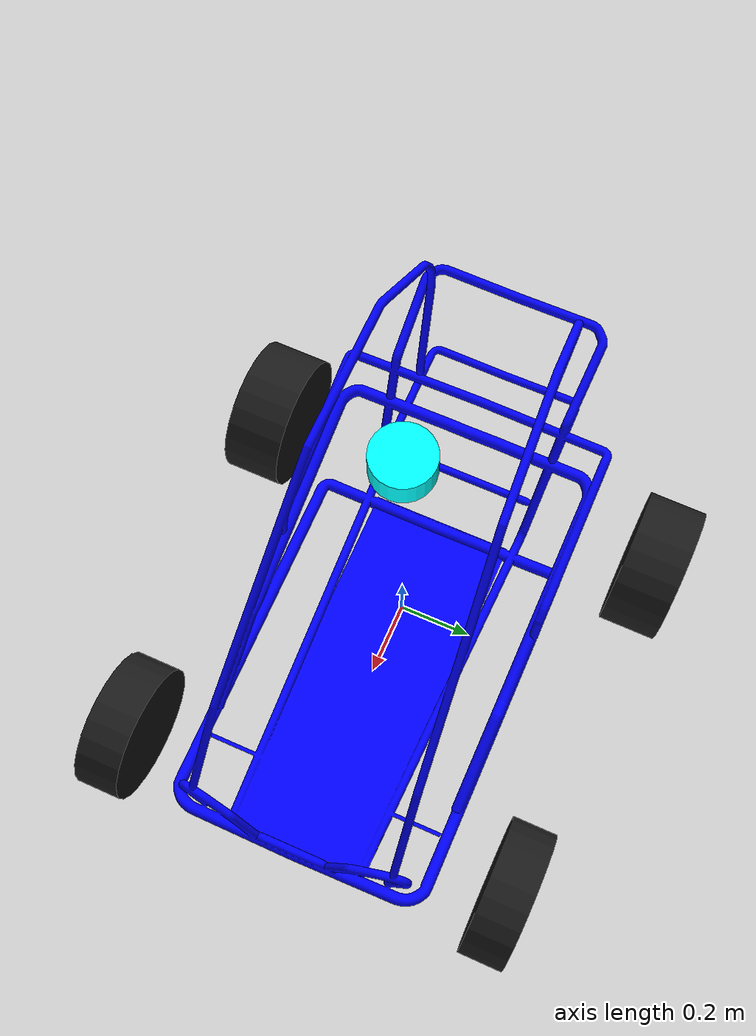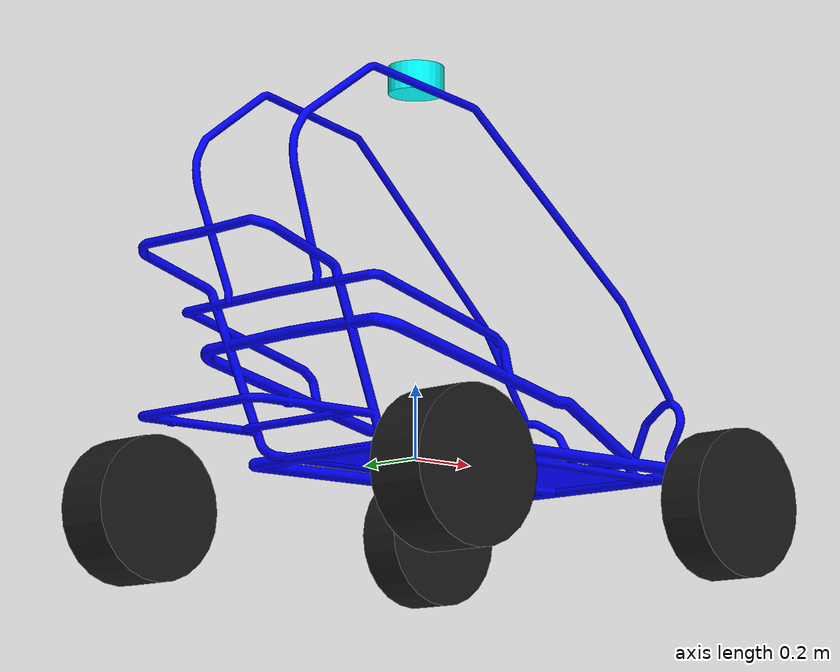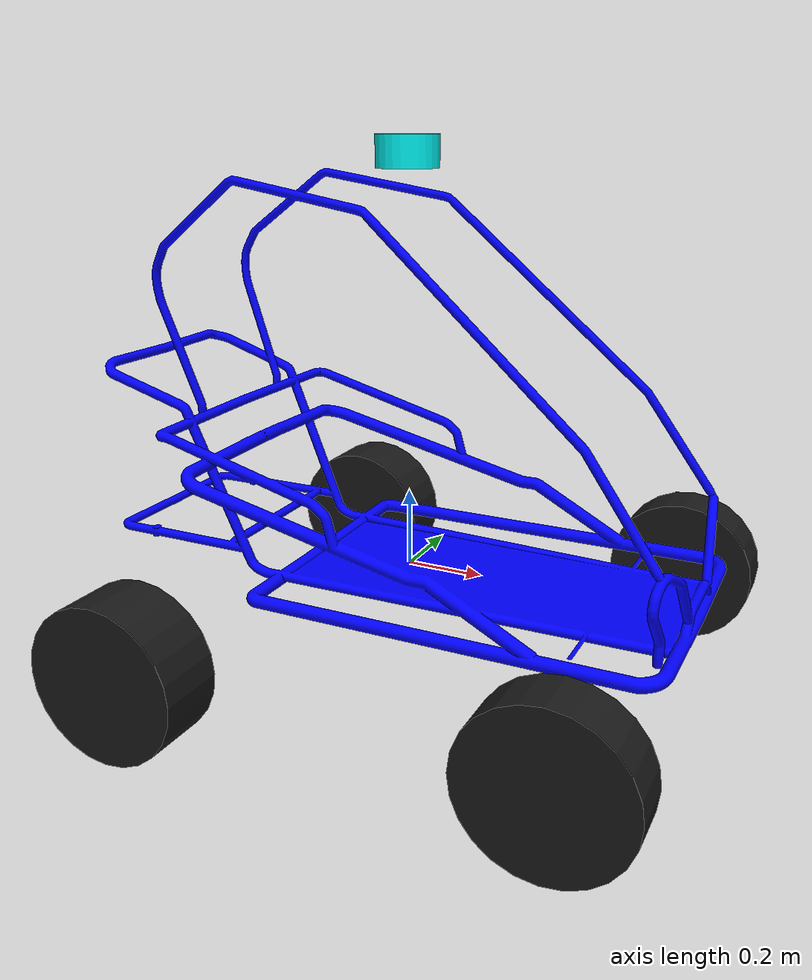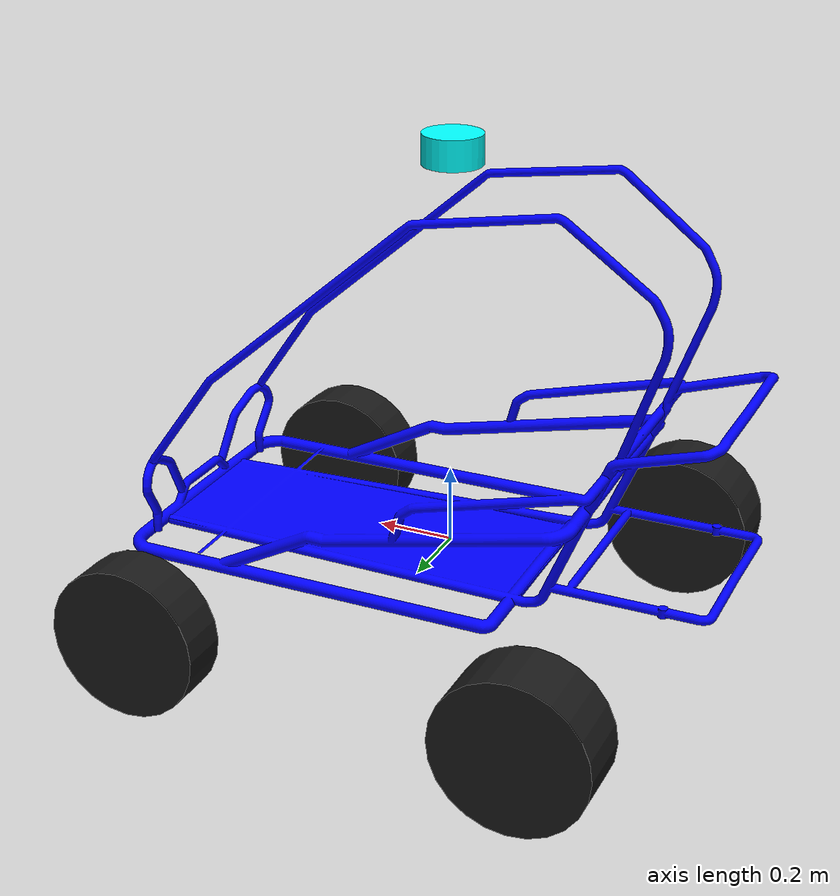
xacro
<?xml version="1.0" ?>

<!-- |    This document was autogenerated by xacro from building_robot.urdf.xacro      | -->
<!-- |    EDITING THIS FILE BY HAND IS NOT RECOMMENDED                                 | -->
  <robot name="new_car" xmlns:xacro="http://ros.org/wiki/xacro">

  <xacro:include filename="inertia_macros.xacro"/>
  <xacro:include filename="ros2_control_ackerman.xacro"/>

  <!-- Colors -->

  <material name="White">
    <color rgba="1.0 1.0 1.0 1.0"/>
  </material>

  <material name="Blue">
      <color rgba="0.0 0.0 1.0 1.0"/>
  </material>

  <material name="Gray">
    <color rgba="0.5 0.5 0.5 1.0"/>
  </material>

  <material name="Black">
      <color rgba="0.1 0.1 0.1 1"/>
  </material>

  <material name="Cyan">
    <color rgba="0 1.0 1.0 1.0"/>
  </material>

  <!-- Robot Base -->
  <link name="base_link">
    <visual>
      <origin rpy="0 0 0" xyz="0 0 0"/>
      <geometry>
        <mesh filename="package://robot_description/description/meshes/new_car_chassis.stl" scale="0.58 0.58 0.58"/>
      </geometry>
      <material name="Blue"/>
    </visual>
    <collision>
      <origin rpy="0 0 0" xyz="0 0 0"/>
      <geometry>
        <mesh filename="package://robot_description/description/meshes/new_car_chassis.stl" scale="0.58 0.58 0.58"/>
      </geometry>
    </collision>
    <xacro:inertia_box mass="113.4" x="1.65" y="0.92" z="1.13">
      <origin rpy="0 0 0" xyz="0 0 0"/>
    </xacro:inertia_box>
  </link>
  <!-- Robot Footprint -->
  <link name="base_footprint"/>
  <joint name="base_joint" type="fixed">
    <parent link="base_link"/>
    <child link="base_footprint"/>
    <origin rpy="0 0 0" xyz="0.0 0.0 -0.323"/>
  </joint>
  <!-- Front Wheels -->
  <link name="Front_Left_steering_link">
    <visual>
      <origin rpy="0 0 0" xyz="0 0 0"/>
      <geometry>
        <cylinder length="0.13" radius="0.01"/>
      </geometry>
      <material name="Black"/>
    </visual>
    <!-- added inertia -->
    <xacro:inertia_cylinder mass="0.001" length="0.13" radius="0.01">
      <origin rpy="0 0 0" xyz="0 0 0"/>
    </xacro:inertia_cylinder>
  </link>
  <joint name="Front_Left_steering_joint" type="revolute">
    <parent link="base_link"/>
    <child link="Front_Left_steering_link"/>
    <origin rpy="0 0 0" xyz="0.6 0.5800000000000001 -0.123"/>
    <axis xyz="0 0 1"/>
    <limit effort="1000.0" lower="-0.698" upper="0.698" velocity="0.5"/>
  </joint>
  <link name="Front_Left_wheel_link">
    <visual>
      <origin rpy="1.5707963267948966 0 0" xyz="0 0 0"/>
      <geometry>
        <cylinder length="0.13" radius="0.2"/>
      </geometry>
      <material name="Black"/>
    </visual>
    <collision>
      <origin rpy="1.5707963267948966 0 0" xyz="0 0 0"/>
      <geometry>
        <cylinder length="0.13" radius="0.2"/>
      </geometry>
    </collision>
    <xacro:inertia_cylinder mass="4.5" length="0.13" radius="0.2">
      <origin rpy="1.5707963267948966 0 0" xyz="0 0 0"/>
    </xacro:inertia_cylinder>
  </link>
  <joint name="Front_Left_wheel_joint" type="continuous">
    <parent link="Front_Left_steering_link"/>
    <child link="Front_Left_wheel_link"/>
    <origin rpy="0 0 0" xyz="0 0 0"/>
    <axis xyz="0 1 0"/>
  </joint>
  <link name="Front_Right_steering_link">
    <visual>
      <origin rpy="0 0 0" xyz="0 0 0"/>
      <geometry>
        <cylinder length="0.13" radius="0.01"/>
      </geometry>
      <material name="Black"/>
    </visual>
    <!-- added inertia -->
    <xacro:inertia_cylinder mass="0.001" length="0.13" radius="0.01">
      <origin rpy="0 0 0" xyz="0 0 0"/>
    </xacro:inertia_cylinder>
  </link>
  <joint name="Front_Right_steering_joint" type="revolute">
    <parent link="base_link"/>
    <child link="Front_Right_steering_link"/>
    <origin rpy="0 0 0" xyz="0.6 -0.5800000000000001 -0.123"/>
    <axis xyz="0 0 1"/>
    <limit effort="1000.0" lower="-0.698" upper="0.698" velocity="0.5"/>
  </joint>
  <link name="Front_Right_wheel_link">
    <visual>
      <origin rpy="1.5707963267948966 0 0" xyz="0 0 0"/>
      <geometry>
        <cylinder length="0.13" radius="0.2"/>
      </geometry>
      <material name="Black"/>
    </visual>
    <collision>
      <origin rpy="1.5707963267948966 0 0" xyz="0 0 0"/>
      <geometry>
        <cylinder length="0.13" radius="0.2"/>
      </geometry>
    </collision>
    <xacro:inertia_cylinder mass="4.5" length="0.13" radius="0.2">
      <origin rpy="1.5707963267948966 0 0" xyz="0 0 0"/>
    </xacro:inertia_cylinder>
  </link>
  <joint name="Front_Right_wheel_joint" type="continuous">
    <parent link="Front_Right_steering_link"/>
    <child link="Front_Right_wheel_link"/>
    <origin rpy="0 0 0" xyz="0 0 0"/>
    <axis xyz="0 1 0"/>
  </joint>
  <!-- Rear Wheels -->
  <link name="Rear_Left_link">
    <visual>
      <origin rpy="1.5707963267948966 0 0" xyz="0 0 0"/>
      <geometry>
        <cylinder length="0.17" radius="0.2"/>
      </geometry>
      <material name="Black"/>
    </visual>
    <collision>
      <origin rpy="1.5707963267948966 0 0" xyz="0 0 0"/>
      <geometry>
        <cylinder length="0.17" radius="0.2"/>
      </geometry>
    </collision>
    <xacro:inertia_cylinder mass="6.8" length="0.17" radius="0.2">
      <origin rpy="1.5707963267948966 0 0" xyz="0 0 0"/>
    </xacro:inertia_cylinder>
  </link>
  <joint name="Rear_Left_wheel_joint" type="continuous">
    <parent link="base_link"/>
    <child link="Rear_Left_link"/>
    <origin rpy="0 0 0" xyz="-0.45 0.61 -0.123"/>
    <axis xyz="0 1 0"/>
  </joint>
  <link name="Rear_Right_link">
    <visual>
      <origin rpy="1.5707963267948966 0 0" xyz="0 0 0"/>
      <geometry>
        <cylinder length="0.17" radius="0.2"/>
      </geometry>
      <material name="Black"/>
    </visual>
    <collision>
      <origin rpy="1.5707963267948966 0 0" xyz="0 0 0"/>
      <geometry>
        <cylinder length="0.17" radius="0.2"/>
      </geometry>
    </collision>
    <xacro:inertia_cylinder mass="6.8" length="0.17" radius="0.2">
      <origin rpy="1.5707963267948966 0 0" xyz="0 0 0"/>
    </xacro:inertia_cylinder>
  </link>
  <joint name="Rear_Right_wheel_joint" type="continuous">
    <parent link="base_link"/>
    <child link="Rear_Right_link"/>
    <origin rpy="0 0 0" xyz="-0.45 -0.61 -0.123"/>
    <axis xyz="0 1 0"/>
  </joint>
  <!-- Lidar -->
  <link name="velodyne">
    <visual>
      <origin rpy="0 0 0" xyz="0 0 0"/>
      <geometry>
        <cylinder length=".0762" radius=".0762"/>
      </geometry>
      <material name="Cyan"/>
    </visual>
    <collision>
      <origin rpy="0 0 0" xyz="0 0 0"/>
      <geometry>
        <cylinder length=".0762" radius=".0762"/>
      </geometry>
    </collision>
    <xacro:inertia_cylinder mass="1.36" length=".0762" radius=".0762">
      <origin rpy="0 0 0" xyz="0 0 0"/>
    </xacro:inertia_cylinder>
  </link>
  <joint name="velodyne_joint" type="fixed">
    <parent link="base_link"/>
    <child link="velodyne"/>
    <origin rpy="0 0 0" xyz="0 0 1.0414"/>
  </joint>

</robot>

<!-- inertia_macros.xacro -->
<robot xmlns:xacro="http://www.ros.org/wiki/xacro" >

    <!-- Specify some standard inertial calculations https://en.wikipedia.org/wiki/List_of_moments_of_inertia -->
    <!-- These make use of xacro's mathematical functionality -->

  <xacro:macro name="inertia_sphere" params="mass radius *origin">
      <inertial>
          <xacro:insert_block name="origin"/>
          <mass value="${mass}" />
          <inertia ixx="${(2/5) * mass * (radius*radius)}" ixy="0.0" ixz="0.0"
                  iyy="${(2/5) * mass * (radius*radius)}" iyz="0.0"
                  izz="${(2/5) * mass * (radius*radius)}" />
      </inertial>
  </xacro:macro>

  <xacro:macro name="inertia_box" params="mass x y z *origin">
      <inertial>
          <xacro:insert_block name="origin"/>
          <mass value="${mass}" />
          <inertia ixx="${(1/12) * mass * (y*y+z*z)}" ixy="0.0" ixz="0.0"
                  iyy="${(1/12) * mass * (x*x+z*z)}" iyz="0.0"
                  izz="${(1/12) * mass * (x*x+y*y)}" />
      </inertial>
  </xacro:macro>

  <xacro:macro name="inertia_cylinder" params="mass length radius *origin">
      <inertial>
          <xacro:insert_block name="origin"/>
          <mass value="${mass}" />
          <inertia ixx="${(1/12) * mass * (3*radius*radius + length*length)}" ixy="0.0" ixz="0.0"
                  iyy="${(1/12) * mass * (3*radius*radius + length*length)}" iyz="0.0"
                  izz="${(1/2) * mass * (radius*radius)}" />
      </inertial>
  </xacro:macro>

  <xacro:macro name="box_inertia" params="m w h d">
    <inertial>
      <origin xyz="0 0 0" rpy="${pi/2} 0 ${pi/2}"/>
      <mass value="${m}"/>
      <inertia ixx="${(m/12) * (h*h + d*d)}" ixy="0.0" ixz="0.0" iyy="${(m/12) * (w*w + d*d)}" iyz="0.0" izz="${(m/12) * (w*w + h*h)}"/>
    </inertial>
  </xacro:macro>

  <xacro:macro name="cylinder_inertia" params="m r h">
    <inertial>
      <origin xyz="0 0 0" rpy="${pi/2} 0 0" />
      <mass value="${m}"/>
      <inertia ixx="${(m/12) * (3*r*r + h*h)}" ixy = "0" ixz = "0" iyy="${(m/12) * (3*r*r + h*h)}" iyz = "0" izz="${(m/2) * (r*r)}"/>
    </inertial>
  </xacro:macro>
</robot>
